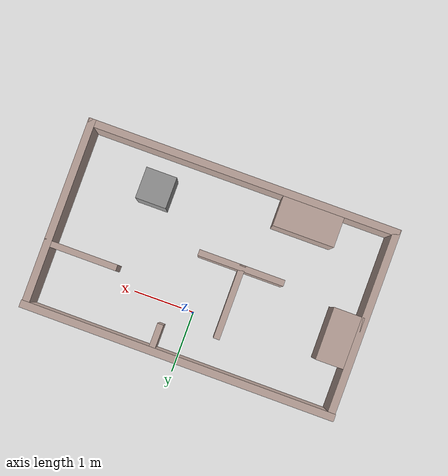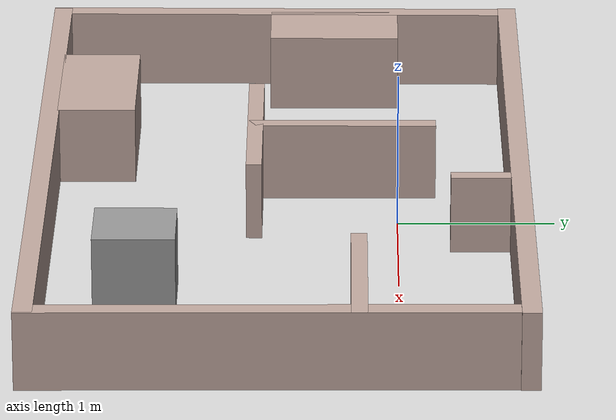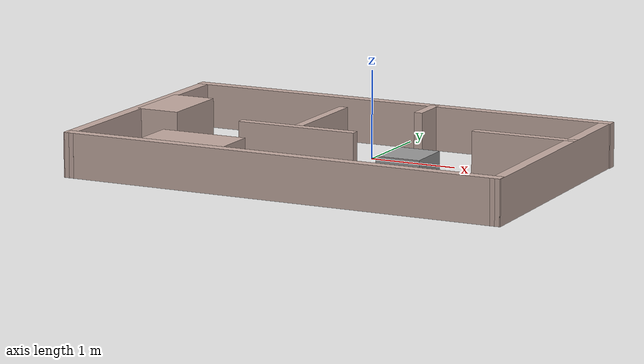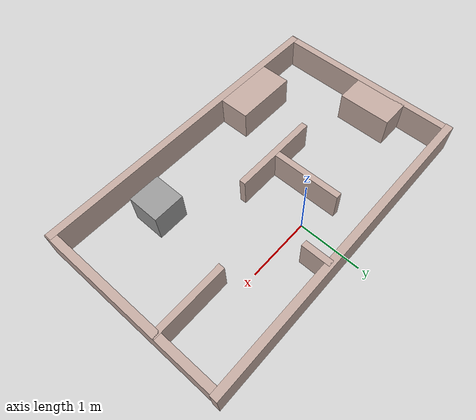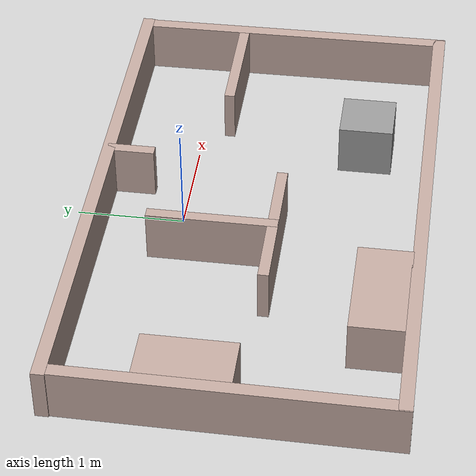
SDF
<?xml version='1.0'?>
<sdf version='1.7'>
  <model name='robo_map3'>
    <model name='MAP11'>
      <pose>0.017074 -0.704138 0 0 -0 0</pose>
      <link name='Wall_0'>
        <collision name='Wall_0_Collision'>
          <geometry>
            <box>
              <size>1 0.5 0.5</size>
            </box>
          </geometry>
          <pose>0 0 0.25 0 -0 0</pose>
        </collision>
        <visual name='Wall_0_Visual'>
          <pose>0 0 0.25 0 -0 0</pose>
          <geometry>
            <box>
              <size>1 0.5 0.5</size>
            </box>
          </geometry>
          <material>
            <script>
              <uri>file://media/materials/scripts/gazebo.material</uri>
              <name>Gazebo/Grey</name>
            </script>
            <ambient>0.760784 0.662745 0.627451 1</ambient>
          </material>
          <meta>
            <layer>0</layer>
          </meta>
        </visual>
        <pose>-1.21039 -1.23246 0 0 -0 0</pose>
      </link>
      <link name='Wall_10'>
        <collision name='Wall_10_Collision'>
          <geometry>
            <box>
              <size>1.19955 0.1 0.5</size>
            </box>
          </geometry>
          <pose>0 0 0.25 0 -0 0</pose>
        </collision>
        <visual name='Wall_10_Visual'>
          <pose>0 0 0.25 0 -0 0</pose>
          <geometry>
            <box>
              <size>1.19955 0.1 0.5</size>
            </box>
          </geometry>
          <material>
            <script>
              <uri>file://media/materials/scripts/gazebo.material</uri>
              <name>Gazebo/Grey</name>
            </script>
            <ambient>0.760784 0.662745 0.627451 1</ambient>
          </material>
          <meta>
            <layer>0</layer>
          </meta>
        </visual>
        <pose>1.92061 0.454544 0 0 -0 3.14159</pose>
      </link>
      <link name='Wall_12'>
        <collision name='Wall_12_Collision'>
          <geometry>
            <box>
              <size>0.45 0.1 0.5</size>
            </box>
          </geometry>
          <pose>0 0 0.25 0 -0 0</pose>
        </collision>
        <visual name='Wall_12_Visual'>
          <pose>0 0 0.25 0 -0 0</pose>
          <geometry>
            <box>
              <size>0.45 0.1 0.5</size>
            </box>
          </geometry>
          <material>
            <script>
              <uri>file://media/materials/scripts/gazebo.material</uri>
              <name>Gazebo/Grey</name>
            </script>
            <ambient>0.760784 0.662745 0.627451 1</ambient>
          </material>
          <meta>
            <layer>0</layer>
          </meta>
        </visual>
        <pose>0.390331 1.25746 0 0 -0 -1.5708</pose>
      </link>
      <link name='Wall_2'>
        <collision name='Wall_2_Collision'>
          <geometry>
            <box>
              <size>0.51 0.5 0.5</size>
            </box>
          </geometry>
          <pose>0 0 0.25 0 -0 0</pose>
        </collision>
        <visual name='Wall_2_Visual'>
          <pose>0 0 0.25 0 -0 0</pose>
          <geometry>
            <box>
              <size>0.51 0.5 0.5</size>
            </box>
          </geometry>
          <material>
            <script>
              <uri>file://media/materials/scripts/gazebo.material</uri>
              <name>Gazebo/Grey</name>
            </script>
            <ambient>1 1 1 1</ambient>
          </material>
          <meta>
            <layer>0</layer>
          </meta>
        </visual>
        <pose>1.17961 -0.917456 0 0 -0 -1.5708</pose>
      </link>
      <link name='Wall_4'>
        <collision name='Wall_4_Collision'>
          <geometry>
            <box>
              <size>0.85 0.5 0.5</size>
            </box>
          </geometry>
          <pose>0 0 0.25 0 -0 0</pose>
        </collision>
        <visual name='Wall_4_Visual'>
          <pose>0 0 0.25 0 -0 0</pose>
          <geometry>
            <box>
              <size>0.85 0.5 0.5</size>
            </box>
          </geometry>
          <material>
            <script>
              <uri>file://media/materials/scripts/gazebo.material</uri>
              <name>Gazebo/Grey</name>
            </script>
            <ambient>0.760784 0.662745 0.627451 1</ambient>
          </material>
          <meta>
            <layer>0</layer>
          </meta>
        </visual>
        <pose>-2.27039 0.302544 0 0 -0 -1.5708</pose>
      </link>
      <link name='Wall_6'>
        <collision name='Wall_6_Collision'>
          <geometry>
            <box>
              <size>1.4 0.1 0.5</size>
            </box>
          </geometry>
          <pose>0 0 0.25 0 -0 0</pose>
        </collision>
        <visual name='Wall_6_Visual'>
          <pose>0 0 0.25 0 -0 0</pose>
          <geometry>
            <box>
              <size>1.4 0.1 0.5</size>
            </box>
          </geometry>
          <material>
            <script>
              <uri>file://media/materials/scripts/gazebo.material</uri>
              <name>Gazebo/Grey</name>
            </script>
            <ambient>0.760784 0.662745 0.627451 1</ambient>
          </material>
          <meta>
            <layer>0</layer>
          </meta>
        </visual>
        <pose>-0.480387 -0.202456 0 0 -0 3.14159</pose>
      </link>
      <link name='Wall_8'>
        <collision name='Wall_8_Collision'>
          <geometry>
            <box>
              <size>1.2 0.1 0.5</size>
            </box>
          </geometry>
          <pose>0 0 0.25 0 -0 0</pose>
        </collision>
        <visual name='Wall_8_Visual'>
          <pose>0 0 0.25 0 -0 0</pose>
          <geometry>
            <box>
              <size>1.2 0.1 0.5</size>
            </box>
          </geometry>
          <material>
            <script>
              <uri>file://media/materials/scripts/gazebo.material</uri>
              <name>Gazebo/Grey</name>
            </script>
            <ambient>0.760784 0.662745 0.627451 1</ambient>
          </material>
          <meta>
            <layer>0</layer>
          </meta>
        </visual>
        <pose>-0.490387 0.353544 0 0 -0 1.5708</pose>
      </link>
      <static>1</static>
    </model>
    <model name='from'>
      <pose>-0.017074 0.704138 0 0 -0 0</pose>
      <link name='Wall_13'>
        <collision name='Wall_13_Collision'>
          <geometry>
            <box>
              <size>5.12 0.12 0.5</size>
            </box>
          </geometry>
          <pose>0 0 0.25 0 -0 0</pose>
        </collision>
        <visual name='Wall_13_Visual'>
          <pose>0 0 0.25 0 -0 0</pose>
          <geometry>
            <box>
              <size>5.12 0.12 0.5</size>
            </box>
          </geometry>
          <material>
            <script>
              <uri>file://media/materials/scripts/gazebo.material</uri>
              <name>Gazebo/Grey</name>
            </script>
            <ambient>0.760784 0.662745 0.627451 1</ambient>
          </material>
          <meta>
            <layer>0</layer>
          </meta>
        </visual>
        <pose>0 0.06 0 0 -0 0</pose>
      </link>
      <link name='Wall_15'>
        <collision name='Wall_15_Collision'>
          <geometry>
            <box>
              <size>5.12 0.12 0.5</size>
            </box>
          </geometry>
          <pose>0 0 0.25 0 -0 0</pose>
        </collision>
        <visual name='Wall_15_Visual'>
          <pose>0 0 0.25 0 -0 0</pose>
          <geometry>
            <box>
              <size>5.12 0.12 0.5</size>
            </box>
          </geometry>
          <material>
            <script>
              <uri>file://media/materials/scripts/gazebo.material</uri>
              <name>Gazebo/Grey</name>
            </script>
            <ambient>0.760784 0.662745 0.627451 1</ambient>
          </material>
          <meta>
            <layer>0</layer>
          </meta>
        </visual>
        <pose>0 -2.94 0 0 -0 0</pose>
      </link>
      <link name='Wall_17'>
        <collision name='Wall_17_Collision'>
          <geometry>
            <box>
              <size>3 0.12 0.5</size>
            </box>
          </geometry>
          <pose>0 0 0.25 0 -0 0</pose>
        </collision>
        <visual name='Wall_17_Visual'>
          <pose>0 0 0.25 0 -0 0</pose>
          <geometry>
            <box>
              <size>3 0.12 0.5</size>
            </box>
          </geometry>
          <material>
            <script>
              <uri>file://media/materials/scripts/gazebo.material</uri>
              <name>Gazebo/Grey</name>
            </script>
            <ambient>0.760784 0.662745 0.627451 1</ambient>
          </material>
          <meta>
            <layer>0</layer>
          </meta>
        </visual>
        <pose>2.5 -1.5 0 0 -0 -1.5636</pose>
      </link>
      <link name='Wall_5'>
        <collision name='Wall_5_Collision'>
          <geometry>
            <box>
              <size>3 0.12 0.5</size>
            </box>
          </geometry>
          <pose>0 0 0.25 0 -0 0</pose>
        </collision>
        <visual name='Wall_5_Visual'>
          <pose>0 0 0.25 0 -0 0</pose>
          <geometry>
            <box>
              <size>3 0.12 0.5</size>
            </box>
          </geometry>
          <material>
            <script>
              <uri>file://media/materials/scripts/gazebo.material</uri>
              <name>Gazebo/Grey</name>
            </script>
            <ambient>0.760784 0.662745 0.627451 1</ambient>
          </material>
          <meta>
            <layer>0</layer>
          </meta>
        </visual>
        <pose>-2.5 -1.5 0 0 -0 1.5636</pose>
      </link>
      <static>1</static>
    </model>
    <static>1</static>
    <allow_auto_disable>1</allow_auto_disable>
  </model>
</sdf>
